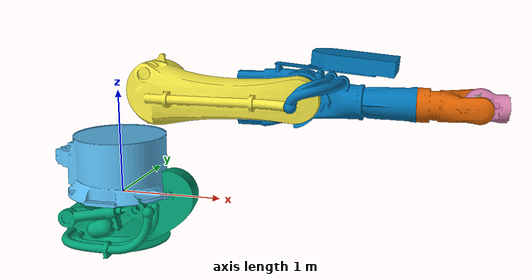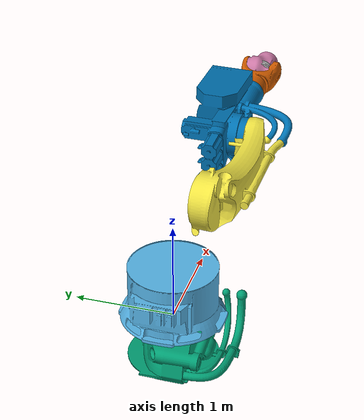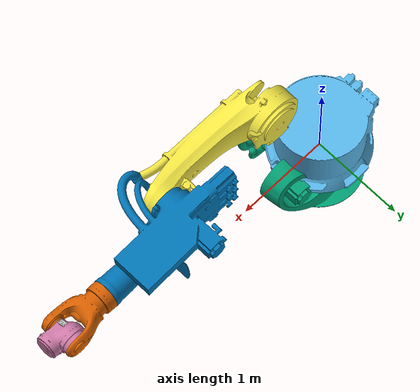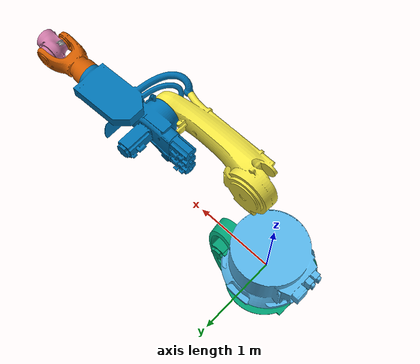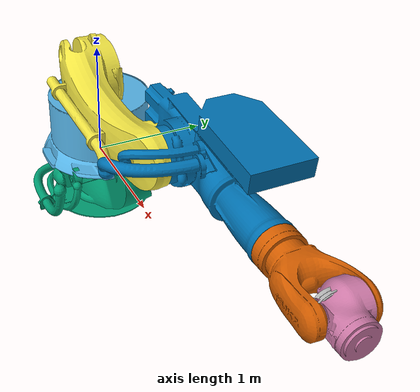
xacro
<?xml version="1.0"?>
<robot xmlns:xacro="http://www.ros.org/wiki/xacro" name="kr240_r3330">
  <!-- Import urdf file  -->
  <xacro:include filename="$(find kuka_fortec_support)/urdf/kr240_r3330_macro.xacro"/>
  <!-- Read additional arguments  -->
  <xacro:arg name="use_fake_hardware" default="false"/>
  <xacro:arg name="roundtrip_time" default="0"/>
  <xacro:arg name="client_ip" default="0.0.0.0"/>
  <xacro:arg name="client_port" default="59152"/>
  <xacro:arg name="controller_ip" default="0.0.0.0"/>
  <xacro:arg name="prefix" default=""/>
  <xacro:arg name="x" default="0"/>
  <xacro:arg name="y" default="0"/>
  <xacro:arg name="z" default="0"/>
  <xacro:arg name="roll" default="0"/>
  <xacro:arg name="pitch" default="0"/>
  <xacro:arg name="yaw" default="0"/>
  <xacro:kuka_kr240_r3330_robot client_ip="$(arg client_ip)" client_port="$(arg client_port)" controller_ip="$(arg controller_ip)" prefix="$(arg prefix)" use_fake_hardware="$(arg use_fake_hardware)" roundtrip_time="$(arg roundtrip_time)">
    <origin xyz="$(arg x) $(arg y) $(arg z)" rpy="$(arg roll) $(arg pitch) $(arg yaw)"/>
  </xacro:kuka_kr240_r3330_robot>
</robot>

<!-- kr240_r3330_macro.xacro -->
<robot xmlns:xacro="http://wiki.ros.org/xacro">
  <xacro:include filename="$(find kuka_fortec_support)/urdf/kr_fortec_ros2_control.xacro"/>
  <xacro:include filename="$(find kuka_fortec_support)/urdf/kr_fortec_transmission.xacro"/>
  <xacro:macro name="kuka_kr240_r3330_robot" params="client_ip client_port controller_ip prefix use_fake_hardware roundtrip_time *origin">
    <!-- ros2 control instance -->
    <xacro:kuka_fortec_ros2_control name="${prefix}kr240_r3330" client_ip="${client_ip}" client_port="${client_port}" controller_ip="${controller_ip}" prefix="${prefix}" use_fake_hardware="${use_fake_hardware}" roundtrip_time="${roundtrip_time}"/>
    <link name="world"/>
    <link name="${prefix}base_link">
      <collision>
        <geometry>
          <mesh filename="package://kuka_fortec_support/meshes/kr240_r3330/collision/base_link.stl"/>
        </geometry>
        <origin rpy="-0.0 0.0 -0.0" xyz="0.0 0.0 0.0"/>
      </collision>
      <visual>
        <geometry>
          <mesh filename="package://kuka_fortec_support/meshes/kr240_r3330/visual/base_link.stl"/>
        </geometry>
        <origin rpy="-0.0 0.0 -0.0" xyz="0.0 0.0 0.0"/>
      </visual>
    </link>
    <link name="${prefix}link_1">
      <collision>
        <geometry>
          <mesh filename="package://kuka_fortec_support/meshes/kr240_r3330/collision/link_1.stl"/>
        </geometry>
        <origin rpy="-0.0 0.0 -0.0" xyz="0.0 0.0 0.0"/>
      </collision>
      <visual>
        <geometry>
          <mesh filename="package://kuka_fortec_support/meshes/kr240_r3330/visual/link_1.stl"/>
        </geometry>
        <origin rpy="-0.0 0.0 -0.0" xyz="0.0 0.0 0.0"/>
      </visual>
    </link>
    <link name="${prefix}link_2">
      <collision>
        <geometry>
          <mesh filename="package://kuka_fortec_support/meshes/kr240_r3330/collision/link_2.stl"/>
        </geometry>
        <origin rpy="-0.0 0.0 -0.0" xyz="0.0 0.0 0.0"/>
      </collision>
      <visual>
        <geometry>
          <mesh filename="package://kuka_fortec_support/meshes/kr240_r3330/visual/link_2.stl"/>
        </geometry>
        <origin rpy="-0.0 0.0 -0.0" xyz="0.0 0.0 0.0"/>
      </visual>
    </link>
    <link name="${prefix}link_3">
      <collision>
        <geometry>
          <mesh filename="package://kuka_fortec_support/meshes/kr240_r3330/collision/link_3.stl"/>
        </geometry>
        <origin rpy="-0.0 0.0 -0.0" xyz="0.0 0.0 0.0"/>
      </collision>
      <visual>
        <geometry>
          <mesh filename="package://kuka_fortec_support/meshes/kr240_r3330/visual/link_3.stl"/>
        </geometry>
        <origin rpy="-0.0 0.0 -0.0" xyz="0.0 0.0 0.0"/>
      </visual>
    </link>
    <link name="${prefix}link_4">
      <collision>
        <geometry>
          <mesh filename="package://kuka_fortec_support/meshes/kr240_r3330/collision/link_4.stl"/>
        </geometry>
        <origin rpy="-0.0 0.0 -0.0" xyz="0.0 0.0 0.0"/>
      </collision>
      <visual>
        <geometry>
          <mesh filename="package://kuka_fortec_support/meshes/kr240_r3330/visual/link_4.stl"/>
        </geometry>
        <origin rpy="-0.0 0.0 -0.0" xyz="0.0 0.0 0.0"/>
      </visual>
    </link>
    <link name="${prefix}link_5">
      <collision>
        <geometry>
          <mesh filename="package://kuka_fortec_support/meshes/kr240_r3330/collision/link_5.stl"/>
        </geometry>
        <origin rpy="-0.0 0.0 -0.0" xyz="0.0 0.0 0.0"/>
      </collision>
      <visual>
        <geometry>
          <mesh filename="package://kuka_fortec_support/meshes/kr240_r3330/visual/link_5.stl"/>
        </geometry>
        <origin rpy="-0.0 0.0 -0.0" xyz="0.0 0.0 0.0"/>
      </visual>
    </link>
    <link name="${prefix}link_6">
      <collision>
        <geometry>
          <mesh filename="package://kuka_fortec_support/meshes/kr240_r3330/collision/link_6.stl"/>
        </geometry>
        <origin rpy="-0.0 0.0 -0.0" xyz="0.0 0.0 0.0"/>
      </collision>
      <visual>
        <geometry>
          <mesh filename="package://kuka_fortec_support/meshes/kr240_r3330/visual/link_6.stl"/>
        </geometry>
        <origin rpy="-0.0 0.0 -0.0" xyz="0.0 0.0 0.0"/>
      </visual>
    </link>
    <joint name="${prefix}world-base_link" type="fixed">
      <parent link="world"/>
      <child link="${prefix}base_link"/>
      <xacro:insert_block name="origin"/>
    </joint>
    <joint name="${prefix}joint_1" type="revolute">
      <axis xyz="0.0 0.0 1.0"/>
      <child link="${prefix}link_1"/>
      <limit effort="15000.0E0" lower="${radians(-185)}" upper="${radians(185)}" velocity="${radians(100)}"/>
      <origin rpy="-3.141592653589793 0.0 -0.0" xyz="0.0 0.0 0.0"/>
      <parent link="${prefix}base_link"/>
    </joint>
    <joint name="${prefix}joint_2" type="revolute">
      <axis xyz="0.0 0.0 1.0"/>
      <child link="${prefix}link_2"/>
      <limit effort="17880.0E0" lower="${radians(-130)}" upper="${radians(20)}" velocity="${radians(90)}"/>
      <origin rpy="${pi/2.0} 0.0 -0.0" xyz="0.5 0.0 -1.045"/>
      <parent link="${prefix}link_1"/>
    </joint>
    <joint name="${prefix}joint_3" type="revolute">
      <axis xyz="0.0 0.0 1.0"/>
      <child link="${prefix}link_3"/>
      <limit effort="15315.272850848E0" lower="${radians(-100)}" upper="${radians(144)}" velocity="${radians(90)}"/>
      <origin rpy="0.0 0.0 -${pi/2.0}" xyz="1.3 0.0 0.0"/>
      <parent link="${prefix}link_2"/>
    </joint>
    <joint name="${prefix}joint_4" type="revolute">
      <axis xyz="0.0 0.0 1.0"/>
      <child link="${prefix}link_4"/>
      <limit effort="4847.11596436905E0" lower="${radians(-350)}" upper="${radians(350)}" velocity="${radians(120)}"/>
      <origin rpy="${pi/2.0} 0.0 -0.0" xyz="-0.055 0.0 0.0"/>
      <parent link="${prefix}link_3"/>
    </joint>
    <joint name="${prefix}joint_5" type="revolute">
      <axis xyz="0.0 0.0 1.0"/>
      <child link="${prefix}link_5"/>
      <limit effort="4852.96953685247E0" lower="${radians(-120)}" upper="${radians(120)}" velocity="${radians(110)}"/>
      <origin rpy="-${pi/2.0} 0.0 -0.0" xyz="0.0 0.0 -1.525"/>
      <parent link="${prefix}link_4"/>
    </joint>
    <joint name="${prefix}joint_6" type="revolute">
      <axis xyz="0.0 0.0 1.0"/>
      <child link="${prefix}link_6"/>
      <limit effort="2675.4449432041E0" lower="${radians(-350)}" upper="${radians(350)}" velocity="${radians(160)}"/>
      <origin rpy="${pi/2.0} 0.0 -0.0" xyz="0.0 0.0 0.0"/>
      <parent link="${prefix}link_5"/>
    </joint>
    <!-- ROS-Industrial 'base' frame - equivalent of 'KUKA ROBROOT'-->
    <link name="${prefix}base"/>
    <joint name="${prefix}base_link-base" type="fixed">
      <origin xyz="0 0 0" rpy="0 0 0"/>
      <parent link="${prefix}base_link"/>
      <child link="${prefix}base"/>
    </joint>
    <!-- ROS-Industrial 'flange' frame - attachment point for EEF models -->
    <link name="${prefix}flange"/>
    <joint name="${prefix}link6-flange" type="fixed">
      <child link="${prefix}flange"/>
      <origin rpy="0 ${pi/2} -0.0" xyz="0.0 0.0 -0.29"/>
      <parent link="${prefix}link_6"/>
    </joint>
    <!-- ROS-Industrial 'tool0' frame - all-zeros tool frame -->
    <link name="${prefix}tool0"/>
    <joint name="${prefix}link6-tool0" type="fixed">
      <child link="${prefix}tool0"/>
      <origin rpy="0 ${pi} -0.0" xyz="0.0 0.0 -0.29"/>
      <parent link="${prefix}link_6"/>
    </joint>
  </xacro:macro>
</robot>
